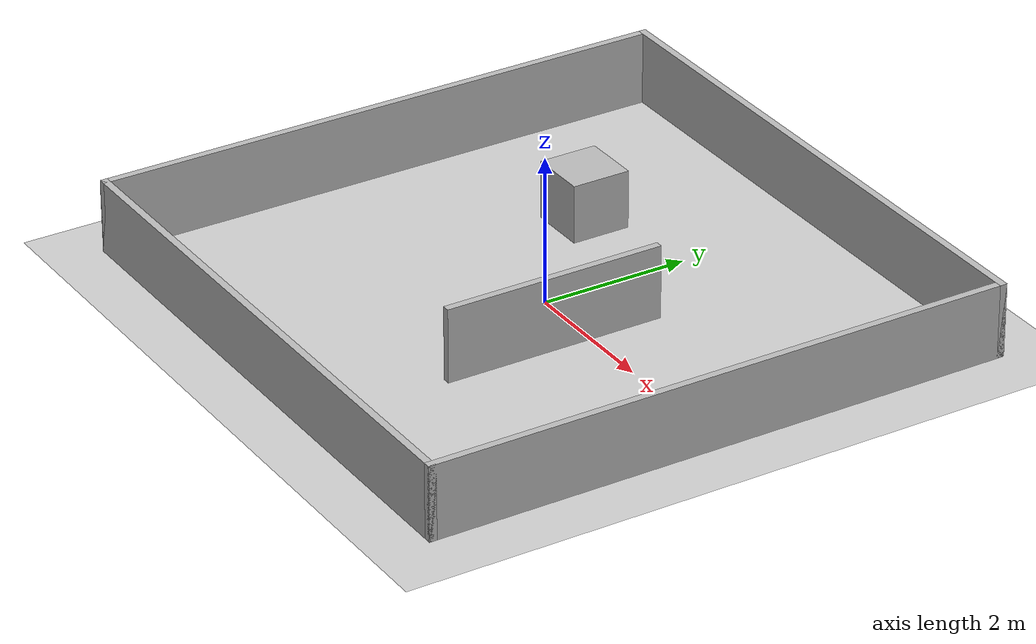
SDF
<?xml version="1.0"?>
<sdf version="1.6">
  <world name="navigation_test">
    <gravity>0 0 -9.81</gravity>
    <physics name="ode" type="ode">
      <max_step_size>0.001</max_step_size>
      <real_time_update_rate>1000</real_time_update_rate>
    </physics>

    <include><uri>model://sun</uri></include>
    <include><uri>model://ground_plane</uri></include>

    <model name="outer_walls">
      <static>true</static>
      <link name="walls">
        <collision name="north_collision">
          <pose>0 3.95 0.5 0 0 0</pose>
          <geometry><box><size>8.0 0.1 1.0</size></box></geometry>
        </collision>
        <visual name="north_visual">
          <pose>0 3.95 0.5 0 0 0</pose>
          <geometry><box><size>8.0 0.1 1.0</size></box></geometry>
        </visual>
        <collision name="south_collision">
          <pose>0 -3.95 0.5 0 0 0</pose>
          <geometry><box><size>8.0 0.1 1.0</size></box></geometry>
        </collision>
        <visual name="south_visual">
          <pose>0 -3.95 0.5 0 0 0</pose>
          <geometry><box><size>8.0 0.1 1.0</size></box></geometry>
        </visual>
        <collision name="east_collision">
          <pose>3.95 0 0.5 0 0 0</pose>
          <geometry><box><size>0.1 8.0 1.0</size></box></geometry>
        </collision>
        <visual name="east_visual">
          <pose>3.95 0 0.5 0 0 0</pose>
          <geometry><box><size>0.1 8.0 1.0</size></box></geometry>
        </visual>
        <collision name="west_collision">
          <pose>-3.95 0 0.5 0 0 0</pose>
          <geometry><box><size>0.1 8.0 1.0</size></box></geometry>
        </collision>
        <visual name="west_visual">
          <pose>-3.95 0 0.5 0 0 0</pose>
          <geometry><box><size>0.1 8.0 1.0</size></box></geometry>
        </visual>
      </link>
    </model>

    <model name="vertical_partition">
      <static>true</static>
      <pose>1.0 -0.5 0.5 0 0 0</pose>
      <link name="wall">
        <collision name="collision"><geometry><box><size>0.1 3.0 1.0</size></box></geometry></collision>
        <visual name="visual"><geometry><box><size>0.1 3.0 1.0</size></box></geometry></visual>
      </link>
    </model>

    <model name="test_box">
      <static>true</static>
      <pose>-1.5 1.5 0.4 0 0 0</pose>
      <link name="box">
        <collision name="collision"><geometry><box><size>0.8 0.8 0.8</size></box></geometry></collision>
        <visual name="visual"><geometry><box><size>0.8 0.8 0.8</size></box></geometry></visual>
      </link>
    </model>
  </world>
</sdf>
